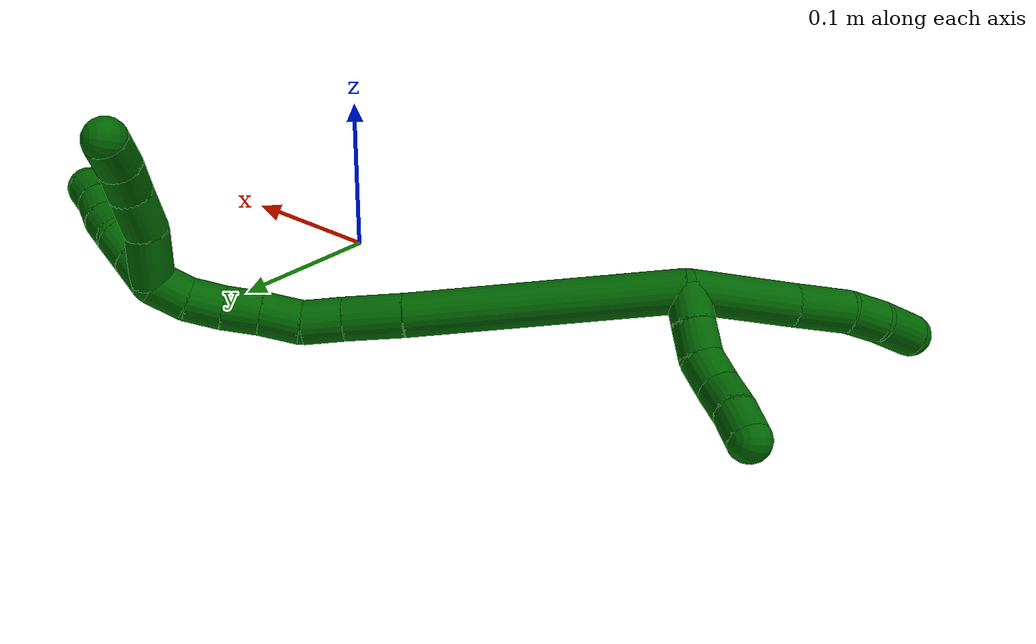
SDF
<sdf version="1.7">
 <world name="default">
  <model name="6">
   <static>0</static>
   <link name="6">
    <collision name="collision-cylinder-e_1_2_8">
     <pose>-0.006005 -0.006002 -0.03165 2.95418 -0.184293 -1.55393</pose>
     <geometry><cylinder><radius>0.0125</radius><length>0.065538</length></cylinder></geometry>
     <surface>
      <friction><ode><mu>1.16</mu><mu2>1.16</mu2><slip1>0</slip1><slip2>0</slip2></ode></friction>
      <contact><ode><kp>1e+06</kp><kd>1</kd><max_vel>0</max_vel><min_depth>0.001</min_depth></ode></contact>
     </surface>
    </collision>
    <visual name="visual-cylinder-e_1_2_8">
     <pose>-0.006005 -0.006002 -0.03165 2.95418 -0.184293 -1.55393</pose>
     <geometry><cylinder><radius>0.0125</radius><length>0.065538</length></cylinder></geometry>
     <material><ambient>0 0.392157 0.003922 1</ambient></material>
    </visual>
    <collision name="collision-cylinder-e_2_8_9">
     <pose>-0.015715 -0.016455 -0.079156 2.86792 -0.221274 -1.35773</pose>
     <geometry><cylinder><radius>0.0125</radius><length>0.033761</length></cylinder></geometry>
     <surface>
      <friction><ode><mu>1.16</mu><mu2>1.16</mu2><slip1>0</slip1><slip2>0</slip2></ode></friction>
      <contact><ode><kp>1e+06</kp><kd>1</kd><max_vel>0</max_vel><min_depth>0.001</min_depth></ode></contact>
     </surface>
    </collision>
    <visual name="visual-cylinder-e_2_8_9">
     <pose>-0.015715 -0.016455 -0.079156 2.86792 -0.221274 -1.35773</pose>
     <geometry><cylinder><radius>0.0125</radius><length>0.033761</length></cylinder></geometry>
     <material><ambient>0 0.392157 0.003922 1</ambient></material>
    </visual>
    <collision name="collision-cylinder-e_3_9_10">
     <pose>-0.022444 -0.021607 -0.105279 3.07339 -0.285835 -2.67603</pose>
     <geometry><cylinder><radius>0.0125</radius><length>0.021453</length></cylinder></geometry>
     <surface>
      <friction><ode><mu>1.16</mu><mu2>1.16</mu2><slip1>0</slip1><slip2>0</slip2></ode></friction>
      <contact><ode><kp>1e+06</kp><kd>1</kd><max_vel>0</max_vel><min_depth>0.001</min_depth></ode></contact>
     </surface>
    </collision>
    <visual name="visual-cylinder-e_3_9_10">
     <pose>-0.022444 -0.021607 -0.105279 3.07339 -0.285835 -2.67603</pose>
     <geometry><cylinder><radius>0.0125</radius><length>0.021453</length></cylinder></geometry>
     <material><ambient>0 0.392157 0.003922 1</ambient></material>
    </visual>
    <collision name="collision-cylinder-e_4_10_6">
     <pose>-0.027749 -0.019539 -0.129724 -2.94865 -0.156559 1.3623</pose>
     <geometry><cylinder><radius>0.0125</radius><length>0.029248</length></cylinder></geometry>
     <surface>
      <friction><ode><mu>1.16</mu><mu2>1.16</mu2><slip1>0</slip1><slip2>0</slip2></ode></friction>
      <contact><ode><kp>1e+06</kp><kd>1</kd><max_vel>0</max_vel><min_depth>0.001</min_depth></ode></contact>
     </surface>
    </collision>
    <visual name="visual-cylinder-e_4_10_6">
     <pose>-0.027749 -0.019539 -0.129724 -2.94865 -0.156559 1.3623</pose>
     <geometry><cylinder><radius>0.0125</radius><length>0.029248</length></cylinder></geometry>
     <material><ambient>0 0.392157 0.003922 1</ambient></material>
    </visual>
    <collision name="collision-cylinder-e_1_2_11">
     <pose>-0.009958 0.000827 0.000386 -1.13389 -1.47944 1.05268</pose>
     <geometry><cylinder><radius>0.0125</radius><length>0.02</length></cylinder></geometry>
     <surface>
      <friction><ode><mu>1.16</mu><mu2>1.16</mu2><slip1>0</slip1><slip2>0</slip2></ode></friction>
      <contact><ode><kp>1e+06</kp><kd>1</kd><max_vel>0</max_vel><min_depth>0.001</min_depth></ode></contact>
     </surface>
    </collision>
    <visual name="visual-cylinder-e_1_2_11">
     <pose>-0.009958 0.000827 0.000386 -1.13389 -1.47944 1.05268</pose>
     <geometry><cylinder><radius>0.0125</radius><length>0.02</length></cylinder></geometry>
     <material><ambient>0 0.392157 0.003922 1</ambient></material>
    </visual>
    <collision name="collision-cylinder-e_2_11_12">
     <pose>-0.02987 0.002612 0.000865 -1.47421 -1.47427 1.37858</pose>
     <geometry><cylinder><radius>0.0125</radius><length>0.02</length></cylinder></geometry>
     <surface>
      <friction><ode><mu>1.16</mu><mu2>1.16</mu2><slip1>0</slip1><slip2>0</slip2></ode></friction>
      <contact><ode><kp>1e+06</kp><kd>1</kd><max_vel>0</max_vel><min_depth>0.001</min_depth></ode></contact>
     </surface>
    </collision>
    <visual name="visual-cylinder-e_2_11_12">
     <pose>-0.02987 0.002612 0.000865 -1.47421 -1.47427 1.37858</pose>
     <geometry><cylinder><radius>0.0125</radius><length>0.02</length></cylinder></geometry>
     <material><ambient>0 0.392157 0.003922 1</ambient></material>
    </visual>
    <collision name="collision-cylinder-e_3_12_13">
     <pose>-0.04953 0.001362 8e-06 1.97668 -1.32793 -1.74217</pose>
     <geometry><cylinder><radius>0.0125</radius><length>0.02</length></cylinder></geometry>
     <surface>
      <friction><ode><mu>1.16</mu><mu2>1.16</mu2><slip1>0</slip1><slip2>0</slip2></ode></friction>
      <contact><ode><kp>1e+06</kp><kd>1</kd><max_vel>0</max_vel><min_depth>0.001</min_depth></ode></contact>
     </surface>
    </collision>
    <visual name="visual-cylinder-e_3_12_13">
     <pose>-0.04953 0.001362 8e-06 1.97668 -1.32793 -1.74217</pose>
     <geometry><cylinder><radius>0.0125</radius><length>0.02</length></cylinder></geometry>
     <material><ambient>0 0.392157 0.003922 1</ambient></material>
    </visual>
    <collision name="collision-cylinder-e_4_13_14">
     <pose>-0.068187 -0.005175 0.000132 1.32767 -1.10863 -0.901975</pose>
     <geometry><cylinder><radius>0.0125</radius><length>0.02</length></cylinder></geometry>
     <surface>
      <friction><ode><mu>1.16</mu><mu2>1.16</mu2><slip1>0</slip1><slip2>0</slip2></ode></friction>
      <contact><ode><kp>1e+06</kp><kd>1</kd><max_vel>0</max_vel><min_depth>0.001</min_depth></ode></contact>
     </surface>
    </collision>
    <visual name="visual-cylinder-e_4_13_14">
     <pose>-0.068187 -0.005175 0.000132 1.32767 -1.10863 -0.901975</pose>
     <geometry><cylinder><radius>0.0125</radius><length>0.02</length></cylinder></geometry>
     <material><ambient>0 0.392157 0.003922 1</ambient></material>
    </visual>
    <collision name="collision-cylinder-e_5_14_5">
     <pose>-0.08648 -0.012824 0.002511 1.19633 -1.20586 -0.877314</pose>
     <geometry><cylinder><radius>0.0125</radius><length>0.02</length></cylinder></geometry>
     <surface>
      <friction><ode><mu>1.16</mu><mu2>1.16</mu2><slip1>0</slip1><slip2>0</slip2></ode></friction>
      <contact><ode><kp>1e+06</kp><kd>1</kd><max_vel>0</max_vel><min_depth>0.001</min_depth></ode></contact>
     </surface>
    </collision>
    <visual name="visual-cylinder-e_5_14_5">
     <pose>-0.08648 -0.012824 0.002511 1.19633 -1.20586 -0.877314</pose>
     <geometry><cylinder><radius>0.0125</radius><length>0.02</length></cylinder></geometry>
     <material><ambient>0 0.392157 0.003922 1</ambient></material>
    </visual>
    <collision name="collision-cylinder-e_1_2_15">
     <pose>0.012249 0.044355 0.063373 -0.610662 0.157042 -0.04959</pose>
     <geometry><cylinder><radius>0.0125</radius><length>0.156635</length></cylinder></geometry>
     <surface>
      <friction><ode><mu>1.16</mu><mu2>1.16</mu2><slip1>0</slip1><slip2>0</slip2></ode></friction>
      <contact><ode><kp>1e+06</kp><kd>1</kd><max_vel>0</max_vel><min_depth>0.001</min_depth></ode></contact>
     </surface>
    </collision>
    <visual name="visual-cylinder-e_1_2_15">
     <pose>0.012249 0.044355 0.063373 -0.610662 0.157042 -0.04959</pose>
     <geometry><cylinder><radius>0.0125</radius><length>0.156635</length></cylinder></geometry>
     <material><ambient>0 0.392157 0.003922 1</ambient></material>
    </visual>
    <collision name="collision-cylinder-e_2_15_16">
     <pose>0.027861 0.09868 0.140152 -0.639471 0.198663 -0.06597</pose>
     <geometry><cylinder><radius>0.0125</radius><length>0.034082</length></cylinder></geometry>
     <surface>
      <friction><ode><mu>1.16</mu><mu2>1.16</mu2><slip1>0</slip1><slip2>0</slip2></ode></friction>
      <contact><ode><kp>1e+06</kp><kd>1</kd><max_vel>0</max_vel><min_depth>0.001</min_depth></ode></contact>
     </surface>
    </collision>
    <visual name="visual-cylinder-e_2_15_16">
     <pose>0.027861 0.09868 0.140152 -0.639471 0.198663 -0.06597</pose>
     <geometry><cylinder><radius>0.0125</radius><length>0.034082</length></cylinder></geometry>
     <material><ambient>0 0.392157 0.003922 1</ambient></material>
    </visual>
    <collision name="collision-cylinder-e_3_16_17">
     <pose>0.032883 0.114987 0.163248 -0.5791 0.142348 -0.042474</pose>
     <geometry><cylinder><radius>0.0125</radius><length>0.023395</length></cylinder></geometry>
     <surface>
      <friction><ode><mu>1.16</mu><mu2>1.16</mu2><slip1>0</slip1><slip2>0</slip2></ode></friction>
      <contact><ode><kp>1e+06</kp><kd>1</kd><max_vel>0</max_vel><min_depth>0.001</min_depth></ode></contact>
     </surface>
    </collision>
    <visual name="visual-cylinder-e_3_16_17">
     <pose>0.032883 0.114987 0.163248 -0.5791 0.142348 -0.042474</pose>
     <geometry><cylinder><radius>0.0125</radius><length>0.023395</length></cylinder></geometry>
     <material><ambient>0 0.392157 0.003922 1</ambient></material>
    </visual>
    <collision name="collision-cylinder-e_4_17_18">
     <pose>0.039134 0.125489 0.182909 -0.395723 0.401843 -0.08162</pose>
     <geometry><cylinder><radius>0.0125</radius><length>0.023479</length></cylinder></geometry>
     <surface>
      <friction><ode><mu>1.16</mu><mu2>1.16</mu2><slip1>0</slip1><slip2>0</slip2></ode></friction>
      <contact><ode><kp>1e+06</kp><kd>1</kd><max_vel>0</max_vel><min_depth>0.001</min_depth></ode></contact>
     </surface>
    </collision>
    <visual name="visual-cylinder-e_4_17_18">
     <pose>0.039134 0.125489 0.182909 -0.395723 0.401843 -0.08162</pose>
     <geometry><cylinder><radius>0.0125</radius><length>0.023479</length></cylinder></geometry>
     <material><ambient>0 0.392157 0.003922 1</ambient></material>
    </visual>
    <collision name="collision-cylinder-e_5_18_19">
     <pose>0.047009 0.133393 0.202397 -0.374278 0.310658 -0.059285</pose>
     <geometry><cylinder><radius>0.0125</radius><length>0.021481</length></cylinder></geometry>
     <surface>
      <friction><ode><mu>1.16</mu><mu2>1.16</mu2><slip1>0</slip1><slip2>0</slip2></ode></friction>
      <contact><ode><kp>1e+06</kp><kd>1</kd><max_vel>0</max_vel><min_depth>0.001</min_depth></ode></contact>
     </surface>
    </collision>
    <visual name="visual-cylinder-e_5_18_19">
     <pose>0.047009 0.133393 0.202397 -0.374278 0.310658 -0.059285</pose>
     <geometry><cylinder><radius>0.0125</radius><length>0.021481</length></cylinder></geometry>
     <material><ambient>0 0.392157 0.003922 1</ambient></material>
    </visual>
    <collision name="collision-cylinder-e_6_19_20">
     <pose>0.053689 0.139276 0.22127 -0.225339 0.340156 -0.038859</pose>
     <geometry><cylinder><radius>0.0125</radius><length>0.02036</length></cylinder></geometry>
     <surface>
      <friction><ode><mu>1.16</mu><mu2>1.16</mu2><slip1>0</slip1><slip2>0</slip2></ode></friction>
      <contact><ode><kp>1e+06</kp><kd>1</kd><max_vel>0</max_vel><min_depth>0.001</min_depth></ode></contact>
     </surface>
    </collision>
    <visual name="visual-cylinder-e_6_19_20">
     <pose>0.053689 0.139276 0.22127 -0.225339 0.340156 -0.038859</pose>
     <geometry><cylinder><radius>0.0125</radius><length>0.02036</length></cylinder></geometry>
     <material><ambient>0 0.392157 0.003922 1</ambient></material>
    </visual>
    <collision name="collision-cylinder-e_7_20_1">
     <pose>0.061971 0.141629 0.23967 -0.023136 0.495092 -0.005847</pose>
     <geometry><cylinder><radius>0.0125</radius><length>0.020567</length></cylinder></geometry>
     <surface>
      <friction><ode><mu>1.16</mu><mu2>1.16</mu2><slip1>0</slip1><slip2>0</slip2></ode></friction>
      <contact><ode><kp>1e+06</kp><kd>1</kd><max_vel>0</max_vel><min_depth>0.001</min_depth></ode></contact>
     </surface>
    </collision>
    <visual name="visual-cylinder-e_7_20_1">
     <pose>0.061971 0.141629 0.23967 -0.023136 0.495092 -0.005847</pose>
     <geometry><cylinder><radius>0.0125</radius><length>0.020567</length></cylinder></geometry>
     <material><ambient>0 0.392157 0.003922 1</ambient></material>
    </visual>
    <collision name="collision-cylinder-e_1_1_21">
     <pose>0.075849 0.14509 0.251645 -0.837594 1.11788 -0.543079</pose>
     <geometry><cylinder><radius>0.0125</radius><length>0.02</length></cylinder></geometry>
     <surface>
      <friction><ode><mu>1.16</mu><mu2>1.16</mu2><slip1>0</slip1><slip2>0</slip2></ode></friction>
      <contact><ode><kp>1e+06</kp><kd>1</kd><max_vel>0</max_vel><min_depth>0.001</min_depth></ode></contact>
     </surface>
    </collision>
    <visual name="visual-cylinder-e_1_1_21">
     <pose>0.075849 0.14509 0.251645 -0.837594 1.11788 -0.543079</pose>
     <geometry><cylinder><radius>0.0125</radius><length>0.02</length></cylinder></geometry>
     <material><ambient>0 0.392157 0.003922 1</ambient></material>
    </visual>
    <collision name="collision-cylinder-e_2_21_22">
     <pose>0.093803 0.151507 0.257679 -0.794948 1.11135 -0.510014</pose>
     <geometry><cylinder><radius>0.0125</radius><length>0.02</length></cylinder></geometry>
     <surface>
      <friction><ode><mu>1.16</mu><mu2>1.16</mu2><slip1>0</slip1><slip2>0</slip2></ode></friction>
      <contact><ode><kp>1e+06</kp><kd>1</kd><max_vel>0</max_vel><min_depth>0.001</min_depth></ode></contact>
     </surface>
    </collision>
    <visual name="visual-cylinder-e_2_21_22">
     <pose>0.093803 0.151507 0.257679 -0.794948 1.11135 -0.510014</pose>
     <geometry><cylinder><radius>0.0125</radius><length>0.02</length></cylinder></geometry>
     <material><ambient>0 0.392157 0.003922 1</ambient></material>
    </visual>
    <collision name="collision-cylinder-e_3_22_23">
     <pose>0.111001 0.160287 0.261597 -1.42716 0.967573 -0.85385</pose>
     <geometry><cylinder><radius>0.0125</radius><length>0.02</length></cylinder></geometry>
     <surface>
      <friction><ode><mu>1.16</mu><mu2>1.16</mu2><slip1>0</slip1><slip2>0</slip2></ode></friction>
      <contact><ode><kp>1e+06</kp><kd>1</kd><max_vel>0</max_vel><min_depth>0.001</min_depth></ode></contact>
     </surface>
    </collision>
    <visual name="visual-cylinder-e_3_22_23">
     <pose>0.111001 0.160287 0.261597 -1.42716 0.967573 -0.85385</pose>
     <geometry><cylinder><radius>0.0125</radius><length>0.02</length></cylinder></geometry>
     <material><ambient>0 0.392157 0.003922 1</ambient></material>
    </visual>
    <collision name="collision-cylinder-e_4_23_24">
     <pose>0.128119 0.170487 0.262134 -1.63062 1.09354 -1.14742</pose>
     <geometry><cylinder><radius>0.0125</radius><length>0.02</length></cylinder></geometry>
     <surface>
      <friction><ode><mu>1.16</mu><mu2>1.16</mu2><slip1>0</slip1><slip2>0</slip2></ode></friction>
      <contact><ode><kp>1e+06</kp><kd>1</kd><max_vel>0</max_vel><min_depth>0.001</min_depth></ode></contact>
     </surface>
    </collision>
    <visual name="visual-cylinder-e_4_23_24">
     <pose>0.128119 0.170487 0.262134 -1.63062 1.09354 -1.14742</pose>
     <geometry><cylinder><radius>0.0125</radius><length>0.02</length></cylinder></geometry>
     <material><ambient>0 0.392157 0.003922 1</ambient></material>
    </visual>
    <collision name="collision-cylinder-e_5_24_4">
     <pose>0.145216 0.180744 0.262452 -1.46684 0.963951 -0.880992</pose>
     <geometry><cylinder><radius>0.0125</radius><length>0.02</length></cylinder></geometry>
     <surface>
      <friction><ode><mu>1.16</mu><mu2>1.16</mu2><slip1>0</slip1><slip2>0</slip2></ode></friction>
      <contact><ode><kp>1e+06</kp><kd>1</kd><max_vel>0</max_vel><min_depth>0.001</min_depth></ode></contact>
     </surface>
    </collision>
    <visual name="visual-cylinder-e_5_24_4">
     <pose>0.145216 0.180744 0.262452 -1.46684 0.963951 -0.880992</pose>
     <geometry><cylinder><radius>0.0125</radius><length>0.02</length></cylinder></geometry>
     <material><ambient>0 0.392157 0.003922 1</ambient></material>
    </visual>
    <collision name="collision-cylinder-e_1_1_25">
     <pose>0.075748 0.129716 0.253572 1.18986 0.597751 0.41111</pose>
     <geometry><cylinder><radius>0.0125</radius><length>0.031596</length></cylinder></geometry>
     <surface>
      <friction><ode><mu>1.16</mu><mu2>1.16</mu2><slip1>0</slip1><slip2>0</slip2></ode></friction>
      <contact><ode><kp>1e+06</kp><kd>1</kd><max_vel>0</max_vel><min_depth>0.001</min_depth></ode></contact>
     </surface>
    </collision>
    <visual name="visual-cylinder-e_1_1_25">
     <pose>0.075748 0.129716 0.253572 1.18986 0.597751 0.41111</pose>
     <geometry><cylinder><radius>0.0125</radius><length>0.031596</length></cylinder></geometry>
     <material><ambient>0 0.392157 0.003922 1</ambient></material>
    </visual>
    <collision name="collision-cylinder-e_2_25_26">
     <pose>0.090222 0.107848 0.265479 0.944396 0.434522 0.224536</pose>
     <geometry><cylinder><radius>0.0125</radius><length>0.026523</length></cylinder></geometry>
     <surface>
      <friction><ode><mu>1.16</mu><mu2>1.16</mu2><slip1>0</slip1><slip2>0</slip2></ode></friction>
      <contact><ode><kp>1e+06</kp><kd>1</kd><max_vel>0</max_vel><min_depth>0.001</min_depth></ode></contact>
     </surface>
    </collision>
    <visual name="visual-cylinder-e_2_25_26">
     <pose>0.090222 0.107848 0.265479 0.944396 0.434522 0.224536</pose>
     <geometry><cylinder><radius>0.0125</radius><length>0.026523</length></cylinder></geometry>
     <material><ambient>0 0.392157 0.003922 1</ambient></material>
    </visual>
    <collision name="collision-cylinder-e_3_26_27">
     <pose>0.098209 0.089462 0.277879 1.01654 0.232304 0.129817</pose>
     <geometry><cylinder><radius>0.0125</radius><length>0.020884</length></cylinder></geometry>
     <surface>
      <friction><ode><mu>1.16</mu><mu2>1.16</mu2><slip1>0</slip1><slip2>0</slip2></ode></friction>
      <contact><ode><kp>1e+06</kp><kd>1</kd><max_vel>0</max_vel><min_depth>0.001</min_depth></ode></contact>
     </surface>
    </collision>
    <visual name="visual-cylinder-e_3_26_27">
     <pose>0.098209 0.089462 0.277879 1.01654 0.232304 0.129817</pose>
     <geometry><cylinder><radius>0.0125</radius><length>0.020884</length></cylinder></geometry>
     <material><ambient>0 0.392157 0.003922 1</ambient></material>
    </visual>
    <collision name="collision-cylinder-e_4_27_3">
     <pose>0.102441 0.072517 0.289384 0.932836 0.175061 0.088306</pose>
     <geometry><cylinder><radius>0.0125</radius><length>0.020996</length></cylinder></geometry>
     <surface>
      <friction><ode><mu>1.16</mu><mu2>1.16</mu2><slip1>0</slip1><slip2>0</slip2></ode></friction>
      <contact><ode><kp>1e+06</kp><kd>1</kd><max_vel>0</max_vel><min_depth>0.001</min_depth></ode></contact>
     </surface>
    </collision>
    <visual name="visual-cylinder-e_4_27_3">
     <pose>0.102441 0.072517 0.289384 0.932836 0.175061 0.088306</pose>
     <geometry><cylinder><radius>0.0125</radius><length>0.020996</length></cylinder></geometry>
     <material><ambient>0 0.392157 0.003922 1</ambient></material>
    </visual>
    <collision name="collision-sphere-3">
     <pose>0.104269 0.064213 0.29554 0 -0 0</pose>
     <geometry><sphere><radius>0.0125</radius></sphere></geometry>
     <surface>
      <friction><ode><mu>1.16</mu><mu2>1.16</mu2><slip1>0</slip1><slip2>0</slip2></ode></friction>
      <contact><ode><kp>1e+06</kp><kd>1</kd><max_vel>0</max_vel><min_depth>0.001</min_depth></ode></contact>
     </surface>
    </collision>
    <visual name="visual-sphere-3">
     <pose>0.104269 0.064213 0.29554 0 -0 0</pose>
     <geometry><sphere><radius>0.0125</radius></sphere></geometry>
     <material><ambient>0 0.392157 0.003922 1</ambient></material>
    </visual>
    <collision name="collision-sphere-27">
     <pose>0.100613 0.080822 0.283227 0 -0 0</pose>
     <geometry><sphere><radius>0.0125</radius></sphere></geometry>
     <surface>
      <friction><ode><mu>1.16</mu><mu2>1.16</mu2><slip1>0</slip1><slip2>0</slip2></ode></friction>
      <contact><ode><kp>1e+06</kp><kd>1</kd><max_vel>0</max_vel><min_depth>0.001</min_depth></ode></contact>
     </surface>
    </collision>
    <visual name="visual-sphere-27">
     <pose>0.100613 0.080822 0.283227 0 -0 0</pose>
     <geometry><sphere><radius>0.0125</radius></sphere></geometry>
     <material><ambient>0 0.392157 0.003922 1</ambient></material>
    </visual>
    <collision name="collision-sphere-26">
     <pose>0.095805 0.098102 0.272531 0 -0 0</pose>
     <geometry><sphere><radius>0.0125</radius></sphere></geometry>
     <surface>
      <friction><ode><mu>1.16</mu><mu2>1.16</mu2><slip1>0</slip1><slip2>0</slip2></ode></friction>
      <contact><ode><kp>1e+06</kp><kd>1</kd><max_vel>0</max_vel><min_depth>0.001</min_depth></ode></contact>
     </surface>
    </collision>
    <visual name="visual-sphere-26">
     <pose>0.095805 0.098102 0.272531 0 -0 0</pose>
     <geometry><sphere><radius>0.0125</radius></sphere></geometry>
     <material><ambient>0 0.392157 0.003922 1</ambient></material>
    </visual>
    <collision name="collision-sphere-25">
     <pose>0.084639 0.117593 0.258427 0 -0 0</pose>
     <geometry><sphere><radius>0.0125</radius></sphere></geometry>
     <surface>
      <friction><ode><mu>1.16</mu><mu2>1.16</mu2><slip1>0</slip1><slip2>0</slip2></ode></friction>
      <contact><ode><kp>1e+06</kp><kd>1</kd><max_vel>0</max_vel><min_depth>0.001</min_depth></ode></contact>
     </surface>
    </collision>
    <visual name="visual-sphere-25">
     <pose>0.084639 0.117593 0.258427 0 -0 0</pose>
     <geometry><sphere><radius>0.0125</radius></sphere></geometry>
     <material><ambient>0 0.392157 0.003922 1</ambient></material>
    </visual>
    <collision name="collision-sphere-4">
     <pose>0.153431 0.186416 0.263043 0 -0 0</pose>
     <geometry><sphere><radius>0.0125</radius></sphere></geometry>
     <surface>
      <friction><ode><mu>1.16</mu><mu2>1.16</mu2><slip1>0</slip1><slip2>0</slip2></ode></friction>
      <contact><ode><kp>1e+06</kp><kd>1</kd><max_vel>0</max_vel><min_depth>0.001</min_depth></ode></contact>
     </surface>
    </collision>
    <visual name="visual-sphere-4">
     <pose>0.153431 0.186416 0.263043 0 -0 0</pose>
     <geometry><sphere><radius>0.0125</radius></sphere></geometry>
     <material><ambient>0 0.392157 0.003922 1</ambient></material>
    </visual>
    <collision name="collision-sphere-24">
     <pose>0.137002 0.175072 0.26186 0 -0 0</pose>
     <geometry><sphere><radius>0.0125</radius></sphere></geometry>
     <surface>
      <friction><ode><mu>1.16</mu><mu2>1.16</mu2><slip1>0</slip1><slip2>0</slip2></ode></friction>
      <contact><ode><kp>1e+06</kp><kd>1</kd><max_vel>0</max_vel><min_depth>0.001</min_depth></ode></contact>
     </surface>
    </collision>
    <visual name="visual-sphere-24">
     <pose>0.137002 0.175072 0.26186 0 -0 0</pose>
     <geometry><sphere><radius>0.0125</radius></sphere></geometry>
     <material><ambient>0 0.392157 0.003922 1</ambient></material>
    </visual>
    <collision name="collision-sphere-23">
     <pose>0.119237 0.165902 0.262409 0 -0 0</pose>
     <geometry><sphere><radius>0.0125</radius></sphere></geometry>
     <surface>
      <friction><ode><mu>1.16</mu><mu2>1.16</mu2><slip1>0</slip1><slip2>0</slip2></ode></friction>
      <contact><ode><kp>1e+06</kp><kd>1</kd><max_vel>0</max_vel><min_depth>0.001</min_depth></ode></contact>
     </surface>
    </collision>
    <visual name="visual-sphere-23">
     <pose>0.119237 0.165902 0.262409 0 -0 0</pose>
     <geometry><sphere><radius>0.0125</radius></sphere></geometry>
     <material><ambient>0 0.392157 0.003922 1</ambient></material>
    </visual>
    <collision name="collision-sphere-22">
     <pose>0.102766 0.154673 0.260785 0 -0 0</pose>
     <geometry><sphere><radius>0.0125</radius></sphere></geometry>
     <surface>
      <friction><ode><mu>1.16</mu><mu2>1.16</mu2><slip1>0</slip1><slip2>0</slip2></ode></friction>
      <contact><ode><kp>1e+06</kp><kd>1</kd><max_vel>0</max_vel><min_depth>0.001</min_depth></ode></contact>
     </surface>
    </collision>
    <visual name="visual-sphere-22">
     <pose>0.102766 0.154673 0.260785 0 -0 0</pose>
     <geometry><sphere><radius>0.0125</radius></sphere></geometry>
     <material><ambient>0 0.392157 0.003922 1</ambient></material>
    </visual>
    <collision name="collision-sphere-21">
     <pose>0.08484 0.148342 0.254574 0 -0 0</pose>
     <geometry><sphere><radius>0.0125</radius></sphere></geometry>
     <surface>
      <friction><ode><mu>1.16</mu><mu2>1.16</mu2><slip1>0</slip1><slip2>0</slip2></ode></friction>
      <contact><ode><kp>1e+06</kp><kd>1</kd><max_vel>0</max_vel><min_depth>0.001</min_depth></ode></contact>
     </surface>
    </collision>
    <visual name="visual-sphere-21">
     <pose>0.08484 0.148342 0.254574 0 -0 0</pose>
     <geometry><sphere><radius>0.0125</radius></sphere></geometry>
     <material><ambient>0 0.392157 0.003922 1</ambient></material>
    </visual>
    <collision name="collision-sphere-1">
     <pose>0.066857 0.141839 0.248717 0 -0 0</pose>
     <geometry><sphere><radius>0.0125</radius></sphere></geometry>
     <surface>
      <friction><ode><mu>1.16</mu><mu2>1.16</mu2><slip1>0</slip1><slip2>0</slip2></ode></friction>
      <contact><ode><kp>1e+06</kp><kd>1</kd><max_vel>0</max_vel><min_depth>0.001</min_depth></ode></contact>
     </surface>
    </collision>
    <visual name="visual-sphere-1">
     <pose>0.066857 0.141839 0.248717 0 -0 0</pose>
     <geometry><sphere><radius>0.0125</radius></sphere></geometry>
     <material><ambient>0 0.392157 0.003922 1</ambient></material>
    </visual>
    <collision name="collision-sphere-11">
     <pose>-0.019917 0.001653 0.000772 0 -0 0</pose>
     <geometry><sphere><radius>0.0125</radius></sphere></geometry>
     <surface>
      <friction><ode><mu>1.16</mu><mu2>1.16</mu2><slip1>0</slip1><slip2>0</slip2></ode></friction>
      <contact><ode><kp>1e+06</kp><kd>1</kd><max_vel>0</max_vel><min_depth>0.001</min_depth></ode></contact>
     </surface>
    </collision>
    <visual name="visual-sphere-11">
     <pose>-0.019917 0.001653 0.000772 0 -0 0</pose>
     <geometry><sphere><radius>0.0125</radius></sphere></geometry>
     <material><ambient>0 0.392157 0.003922 1</ambient></material>
    </visual>
    <collision name="collision-sphere-6">
     <pose>-0.030029 -0.016769 -0.143901 0 -0 0</pose>
     <geometry><sphere><radius>0.0125</radius></sphere></geometry>
     <surface>
      <friction><ode><mu>1.16</mu><mu2>1.16</mu2><slip1>0</slip1><slip2>0</slip2></ode></friction>
      <contact><ode><kp>1e+06</kp><kd>1</kd><max_vel>0</max_vel><min_depth>0.001</min_depth></ode></contact>
     </surface>
    </collision>
    <visual name="visual-sphere-6">
     <pose>-0.030029 -0.016769 -0.143901 0 -0 0</pose>
     <geometry><sphere><radius>0.0125</radius></sphere></geometry>
     <material><ambient>0 0.392157 0.003922 1</ambient></material>
    </visual>
    <collision name="collision-sphere-10">
     <pose>-0.025468 -0.022309 -0.115547 0 -0 0</pose>
     <geometry><sphere><radius>0.0125</radius></sphere></geometry>
     <surface>
      <friction><ode><mu>1.16</mu><mu2>1.16</mu2><slip1>0</slip1><slip2>0</slip2></ode></friction>
      <contact><ode><kp>1e+06</kp><kd>1</kd><max_vel>0</max_vel><min_depth>0.001</min_depth></ode></contact>
     </surface>
    </collision>
    <visual name="visual-sphere-10">
     <pose>-0.025468 -0.022309 -0.115547 0 -0 0</pose>
     <geometry><sphere><radius>0.0125</radius></sphere></geometry>
     <material><ambient>0 0.392157 0.003922 1</ambient></material>
    </visual>
    <collision name="collision-sphere-9">
     <pose>-0.01942 -0.020906 -0.095012 0 -0 0</pose>
     <geometry><sphere><radius>0.0125</radius></sphere></geometry>
     <surface>
      <friction><ode><mu>1.16</mu><mu2>1.16</mu2><slip1>0</slip1><slip2>0</slip2></ode></friction>
      <contact><ode><kp>1e+06</kp><kd>1</kd><max_vel>0</max_vel><min_depth>0.001</min_depth></ode></contact>
     </surface>
    </collision>
    <visual name="visual-sphere-9">
     <pose>-0.01942 -0.020906 -0.095012 0 -0 0</pose>
     <geometry><sphere><radius>0.0125</radius></sphere></geometry>
     <material><ambient>0 0.392157 0.003922 1</ambient></material>
    </visual>
    <collision name="collision-sphere-2">
     <geometry><sphere><radius>0.0125</radius></sphere></geometry>
     <surface>
      <friction><ode><mu>1.16</mu><mu2>1.16</mu2><slip1>0</slip1><slip2>0</slip2></ode></friction>
      <contact><ode><kp>1e+06</kp><kd>1</kd><max_vel>0</max_vel><min_depth>0.001</min_depth></ode></contact>
     </surface>
    </collision>
    <visual name="visual-sphere-2">
     <geometry><sphere><radius>0.0125</radius></sphere></geometry>
     <material><ambient>0 0.392157 0.003922 1</ambient></material>
    </visual>
    <collision name="collision-sphere-19">
     <pose>0.050292 0.137131 0.211916 0 -0 0</pose>
     <geometry><sphere><radius>0.0125</radius></sphere></geometry>
     <surface>
      <friction><ode><mu>1.16</mu><mu2>1.16</mu2><slip1>0</slip1><slip2>0</slip2></ode></friction>
      <contact><ode><kp>1e+06</kp><kd>1</kd><max_vel>0</max_vel><min_depth>0.001</min_depth></ode></contact>
     </surface>
    </collision>
    <visual name="visual-sphere-19">
     <pose>0.050292 0.137131 0.211916 0 -0 0</pose>
     <geometry><sphere><radius>0.0125</radius></sphere></geometry>
     <material><ambient>0 0.392157 0.003922 1</ambient></material>
    </visual>
    <collision name="collision-sphere-8">
     <pose>-0.01201 -0.012004 -0.0633 0 -0 0</pose>
     <geometry><sphere><radius>0.0125</radius></sphere></geometry>
     <surface>
      <friction><ode><mu>1.16</mu><mu2>1.16</mu2><slip1>0</slip1><slip2>0</slip2></ode></friction>
      <contact><ode><kp>1e+06</kp><kd>1</kd><max_vel>0</max_vel><min_depth>0.001</min_depth></ode></contact>
     </surface>
    </collision>
    <visual name="visual-sphere-8">
     <pose>-0.01201 -0.012004 -0.0633 0 -0 0</pose>
     <geometry><sphere><radius>0.0125</radius></sphere></geometry>
     <material><ambient>0 0.392157 0.003922 1</ambient></material>
    </visual>
    <collision name="collision-sphere-12">
     <pose>-0.039823 0.003572 0.000958 0 -0 0</pose>
     <geometry><sphere><radius>0.0125</radius></sphere></geometry>
     <surface>
      <friction><ode><mu>1.16</mu><mu2>1.16</mu2><slip1>0</slip1><slip2>0</slip2></ode></friction>
      <contact><ode><kp>1e+06</kp><kd>1</kd><max_vel>0</max_vel><min_depth>0.001</min_depth></ode></contact>
     </surface>
    </collision>
    <visual name="visual-sphere-12">
     <pose>-0.039823 0.003572 0.000958 0 -0 0</pose>
     <geometry><sphere><radius>0.0125</radius></sphere></geometry>
     <material><ambient>0 0.392157 0.003922 1</ambient></material>
    </visual>
    <collision name="collision-sphere-13">
     <pose>-0.059237 -0.000847 -0.000941 0 -0 0</pose>
     <geometry><sphere><radius>0.0125</radius></sphere></geometry>
     <surface>
      <friction><ode><mu>1.16</mu><mu2>1.16</mu2><slip1>0</slip1><slip2>0</slip2></ode></friction>
      <contact><ode><kp>1e+06</kp><kd>1</kd><max_vel>0</max_vel><min_depth>0.001</min_depth></ode></contact>
     </surface>
    </collision>
    <visual name="visual-sphere-13">
     <pose>-0.059237 -0.000847 -0.000941 0 -0 0</pose>
     <geometry><sphere><radius>0.0125</radius></sphere></geometry>
     <material><ambient>0 0.392157 0.003922 1</ambient></material>
    </visual>
    <collision name="collision-sphere-14">
     <pose>-0.077138 -0.009503 0.001206 0 -0 0</pose>
     <geometry><sphere><radius>0.0125</radius></sphere></geometry>
     <surface>
      <friction><ode><mu>1.16</mu><mu2>1.16</mu2><slip1>0</slip1><slip2>0</slip2></ode></friction>
      <contact><ode><kp>1e+06</kp><kd>1</kd><max_vel>0</max_vel><min_depth>0.001</min_depth></ode></contact>
     </surface>
    </collision>
    <visual name="visual-sphere-14">
     <pose>-0.077138 -0.009503 0.001206 0 -0 0</pose>
     <geometry><sphere><radius>0.0125</radius></sphere></geometry>
     <material><ambient>0 0.392157 0.003922 1</ambient></material>
    </visual>
    <collision name="collision-sphere-5">
     <pose>-0.095821 -0.016146 0.003817 0 -0 0</pose>
     <geometry><sphere><radius>0.0125</radius></sphere></geometry>
     <surface>
      <friction><ode><mu>1.16</mu><mu2>1.16</mu2><slip1>0</slip1><slip2>0</slip2></ode></friction>
      <contact><ode><kp>1e+06</kp><kd>1</kd><max_vel>0</max_vel><min_depth>0.001</min_depth></ode></contact>
     </surface>
    </collision>
    <visual name="visual-sphere-5">
     <pose>-0.095821 -0.016146 0.003817 0 -0 0</pose>
     <geometry><sphere><radius>0.0125</radius></sphere></geometry>
     <material><ambient>0 0.392157 0.003922 1</ambient></material>
    </visual>
    <collision name="collision-sphere-15">
     <pose>0.024497 0.088711 0.126747 0 -0 0</pose>
     <geometry><sphere><radius>0.0125</radius></sphere></geometry>
     <surface>
      <friction><ode><mu>1.16</mu><mu2>1.16</mu2><slip1>0</slip1><slip2>0</slip2></ode></friction>
      <contact><ode><kp>1e+06</kp><kd>1</kd><max_vel>0</max_vel><min_depth>0.001</min_depth></ode></contact>
     </surface>
    </collision>
    <visual name="visual-sphere-15">
     <pose>0.024497 0.088711 0.126747 0 -0 0</pose>
     <geometry><sphere><radius>0.0125</radius></sphere></geometry>
     <material><ambient>0 0.392157 0.003922 1</ambient></material>
    </visual>
    <collision name="collision-sphere-16">
     <pose>0.031224 0.10865 0.153557 0 -0 0</pose>
     <geometry><sphere><radius>0.0125</radius></sphere></geometry>
     <surface>
      <friction><ode><mu>1.16</mu><mu2>1.16</mu2><slip1>0</slip1><slip2>0</slip2></ode></friction>
      <contact><ode><kp>1e+06</kp><kd>1</kd><max_vel>0</max_vel><min_depth>0.001</min_depth></ode></contact>
     </surface>
    </collision>
    <visual name="visual-sphere-16">
     <pose>0.031224 0.10865 0.153557 0 -0 0</pose>
     <geometry><sphere><radius>0.0125</radius></sphere></geometry>
     <material><ambient>0 0.392157 0.003922 1</ambient></material>
    </visual>
    <collision name="collision-sphere-17">
     <pose>0.034543 0.121324 0.17294 0 -0 0</pose>
     <geometry><sphere><radius>0.0125</radius></sphere></geometry>
     <surface>
      <friction><ode><mu>1.16</mu><mu2>1.16</mu2><slip1>0</slip1><slip2>0</slip2></ode></friction>
      <contact><ode><kp>1e+06</kp><kd>1</kd><max_vel>0</max_vel><min_depth>0.001</min_depth></ode></contact>
     </surface>
    </collision>
    <visual name="visual-sphere-17">
     <pose>0.034543 0.121324 0.17294 0 -0 0</pose>
     <geometry><sphere><radius>0.0125</radius></sphere></geometry>
     <material><ambient>0 0.392157 0.003922 1</ambient></material>
    </visual>
    <collision name="collision-sphere-18">
     <pose>0.043726 0.129654 0.192879 0 -0 0</pose>
     <geometry><sphere><radius>0.0125</radius></sphere></geometry>
     <surface>
      <friction><ode><mu>1.16</mu><mu2>1.16</mu2><slip1>0</slip1><slip2>0</slip2></ode></friction>
      <contact><ode><kp>1e+06</kp><kd>1</kd><max_vel>0</max_vel><min_depth>0.001</min_depth></ode></contact>
     </surface>
    </collision>
    <visual name="visual-sphere-18">
     <pose>0.043726 0.129654 0.192879 0 -0 0</pose>
     <geometry><sphere><radius>0.0125</radius></sphere></geometry>
     <material><ambient>0 0.392157 0.003922 1</ambient></material>
    </visual>
    <collision name="collision-sphere-20">
     <pose>0.057085 0.14142 0.230624 0 -0 0</pose>
     <geometry><sphere><radius>0.0125</radius></sphere></geometry>
     <surface>
      <friction><ode><mu>1.16</mu><mu2>1.16</mu2><slip1>0</slip1><slip2>0</slip2></ode></friction>
      <contact><ode><kp>1e+06</kp><kd>1</kd><max_vel>0</max_vel><min_depth>0.001</min_depth></ode></contact>
     </surface>
    </collision>
    <visual name="visual-sphere-20">
     <pose>0.057085 0.14142 0.230624 0 -0 0</pose>
     <geometry><sphere><radius>0.0125</radius></sphere></geometry>
     <material><ambient>0 0.392157 0.003922 1</ambient></material>
    </visual>
    <inertial>
     <pose>0.027872 0.065101 0.104961 0 -0 0</pose>
     <mass>0.75</mass>
     <inertia>
      <ixx>0.000306</ixx>
      <ixy>0</ixy>
      <ixz>0</ixz>
      <iyy>0.00026</iyy>
      <iyz>0</iyz>
      <izz>-0.000217</izz>
     </inertia>
    </inertial>
   </link>
   <pose>-0.273402 0.015717 0.057342 -1.21371 -0.648488 -0.594667</pose>
  </model>
 </world>
</sdf>
